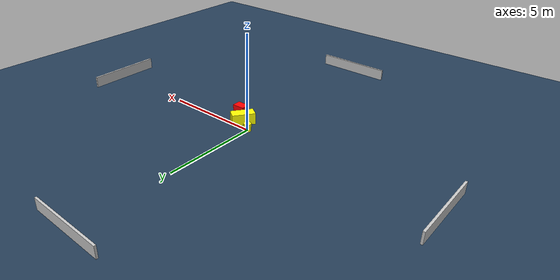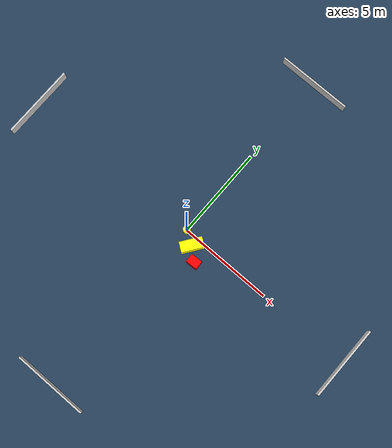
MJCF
<?xml version="1.0" ?>
<mujoco model="generated_environment">
  <option timestep="0.01" integrator="RK4" cone="elliptic"/>
  <default>
    <geom density="1"/>
  </default>
  <asset>
    <texture builtin="gradient" height="3072" name="skybox" rgb1="0.3 0.5 0.7" rgb2="0 0 0" type="skybox" width="512"/>
    <texture builtin="checker" height="300" name="groundplane" rgb1="0.2 0.3 0.4" rgb2="0.1 0.2 0.3" type="2d" width="300"/>
    <material name="groundplane" reflectance="0.2" texrepeat="5 5" texture="groundplane"/>
  </asset>
  <worldbody>
    <light dir="0 0 -1" directional="true" pos="0 0 1.5"/>
    <geom condim="3" friction="0.5 0.005 0.001" material="groundplane" name="floor" pos="0 0 0" size="0 0 0.05" type="plane"/>
    <body name="walls">
      <geom name="wall_1" condim="4" pos="-10.0 0.0 0.3" rgba="0.800000011920929 0.800000011920929 0.800000011920929 1.0" size="0.05 2.0 0.3" type="box"/>
      <geom name="wall_2" condim="4" pos="10.0 0.0 0.3" rgba="0.800000011920929 0.800000011920929 0.800000011920929 1.0" size="0.05 2.0 0.3" type="box"/>
      <geom name="wall_3" condim="4" pos="0.0 -10.0 0.3" rgba="0.800000011920929 0.800000011920929 0.800000011920929 1.0" size="2.0 0.05 0.3" type="box"/>
      <geom name="wall_4" condim="4" pos="0.0 10.0 0.3" rgba="0.800000011920929 0.800000011920929 0.800000011920929 1.0" size="2.0 0.05 0.3" type="box"/>
    </body>
    <body name="robot">
      <joint name="joint_x" type="slide" pos="0 0 0" axis="1 0 0"/>
      <joint name="joint_y" type="slide" pos="0 0 0" axis="0 1 0"/>
      <geom name="robot" type="cylinder" pos="0.0 0.0 0.2" size="0.2 0.2 0.0" mass="5.0" friction="1.0 0.005 0.0001" condim="4" rgba="1.0 1.0 0.0 1.0"/>
    </body>
    <body name="obstacle_1_movable">
      <geom name="obstacle_1_movable" condim="4" pos="0.7027401144489592 -0.4398671555033521 0.3" euler="0 0 144.44583573753" friction="0.0 0.005 0.001" rgba="1.0 1.0 0.0 1.0" size="0.2786669856690219 0.5993842938854183 0.3" type="box" mass="0.1"/>
      <joint type="free"/>
    </body>
    <body name="obstacle_2_static">
      <geom name="obstacle_2_static" condim="4" pos="1.338271615034199 -0.9992147469984753 0.3" euler="0 0 272.4513706149623" friction="0.0 0.005 0.001" rgba="1.0 0.0 0.0 1.0" size="0.23539297931075304 0.31468107563862274 0.3" type="box"/>
    </body>
  </worldbody>
  <actuator>
    <motor name="actuator_x" joint="joint_x" gear="1" ctrlrange="-1 1"/>
    <motor name="actuator_y" joint="joint_y" gear="1" ctrlrange="-1 1"/>
  </actuator>
</mujoco>
